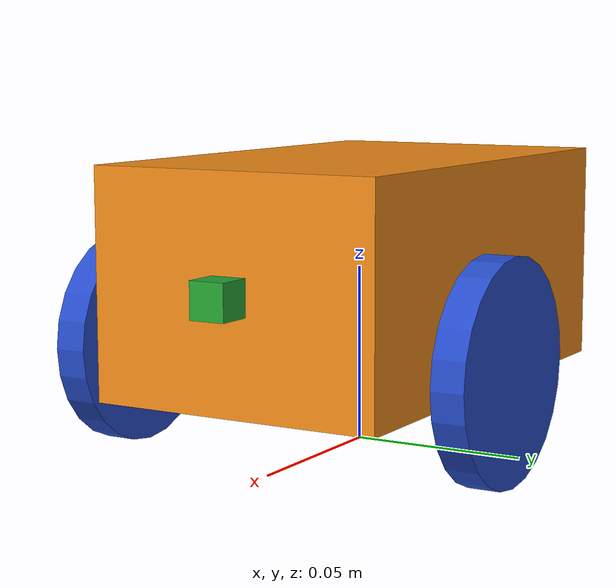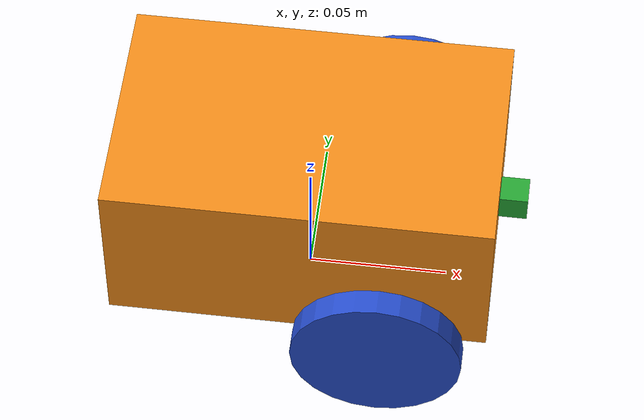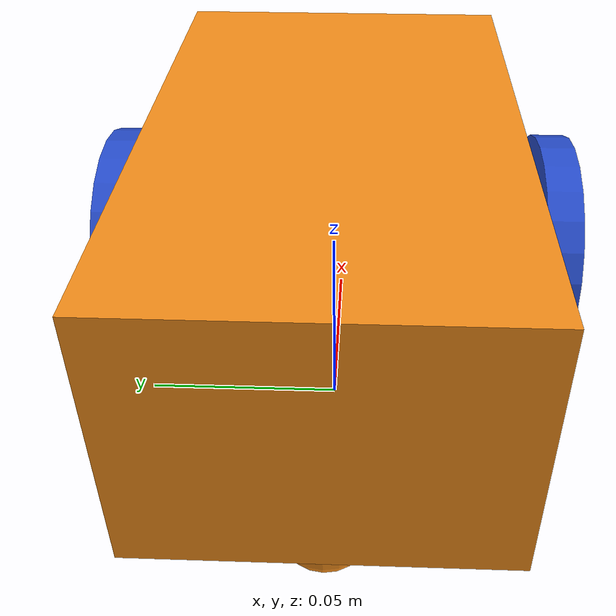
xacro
<?xml version='1.0'?>
<!-- basicjetbot // URDF MODEL DEFINITION -->

<robot name="basicjetbot" xmlns:xacro="http://www.ros.org/wiki/xacro">

  <xacro:include filename="$(find basicjetbot_description)/urdf/basicjetbot.gazebo" />

  <!-- CHASSIS -->
  <link name="chassis">
    <visual>
      <origin xyz="0 0 0.05"/>
      <geometry>
        <box size=".135 .083 .063"/>
      </geometry>
    </visual>

    <collision name="chassis_collision">
      <origin xyz="0 0 0.05"/>
      <geometry>
        <box size=".135 .083 .063"/>
      </geometry>
    </collision>

    <inertial>
      <origin xyz="0.01 0 0.05"/>
      <mass value="0.837"/>
      <inertia ixx="0.0007576" ixy="0" ixz="0" iyy="0.0015486" iyz="0" izz="0.0017524"/>
    </inertial>

    <!-- CASTER -->
    <visual name = "caster">
      <origin xyz="-0.0508 0 0.0117"/>
      <geometry>
        <sphere radius="0.0117"/>
      </geometry>
    </visual>

    <collision>
      <origin xyz="-0.0508 0 0.0117"/>
      <geometry>
        <sphere radius="0.0117"/>
      </geometry>
      <surface>
        <friction>
          <ode>
            <mu>0</mu>
            <mu2>0</mu2>
          </ode>
        </friction>
      </surface>
    </collision>
  </link>

  <!-- WHEELS -->
  <link name="left_wheel">
    <visual>
      <origin rpy="0 1.5707 1.5707"/>
      <geometry>
        <cylinder radius="0.03" length="0.009"/>
      </geometry>
    </visual>

    <collision>
      <origin rpy="0 1.5707 1.5707"/>
      <geometry>
        <cylinder radius="0.03" length="0.009"/>
      </geometry>
    </collision>

    <inertial>
      <origin rpy="0 1.5707 1.5707"/>
      <mass value="0.03"/>
      <inertia ixx="0.00000693" ixy="0.0" ixz="0.0" iyy="0.00000693" iyz="0.0" izz="0.00001346"/>
    </inertial>
  </link>

  <link name="right_wheel">
    <visual>
      <origin rpy="0 1.5707 1.5707"/>
      <geometry>
        <cylinder radius="0.03" length="0.009"/>
      </geometry>
    </visual>

    <collision>
      <origin rpy="0 1.5707 1.5707"/>
      <geometry>
        <cylinder radius="0.03" length="0.009"/>
      </geometry>
    </collision>

    <inertial>
      <origin rpy="0 1.5707 1.5707"/>
      <mass value="0.03"/>
      <inertia ixx="0.00000693" ixy="0.0" ixz="0.0" iyy="0.00000693" iyz="0.0" izz="0.00001346"/>
    </inertial>
  </link>

  <!-- MOTORS -->
  <joint type="continuous" name="left_motor">
    <origin xyz="0.03 0.057 0.03"/>
    <child link="left_wheel"/>
    <parent link="chassis"/>
    <axis xyz="0 1 0"/>
  </joint>

  <joint type="continuous" name="right_motor">
    <origin xyz="0.03 -0.057 0.03"/>
    <child link="right_wheel"/>
    <parent link="chassis"/>
    <axis xyz="0 1 0"/>
  </joint>

  <!-- CAMERA -->
  <link name="camera">
    <visual>
      <geometry>
        <box size="0.01 0.01 0.01"/>
      </geometry>
    </visual>

    <collision>
      <geometry>
        <box size="0.01 0.01 0.01"/>
      </geometry>
    </collision>

    <inertial>
      <mass value="0" />
      <inertia ixx="0" ixy="0" ixz="0" iyy="0" iyz="0" izz="0" />
    </inertial>
  </link>

  <joint name="camera_joint" type="fixed">
    <axis xyz="0 1 0" />
    <origin xyz="0.0725 0 0.05"/>
    <parent link="chassis"/>
    <child link="camera"/>
  </joint>

</robot>
